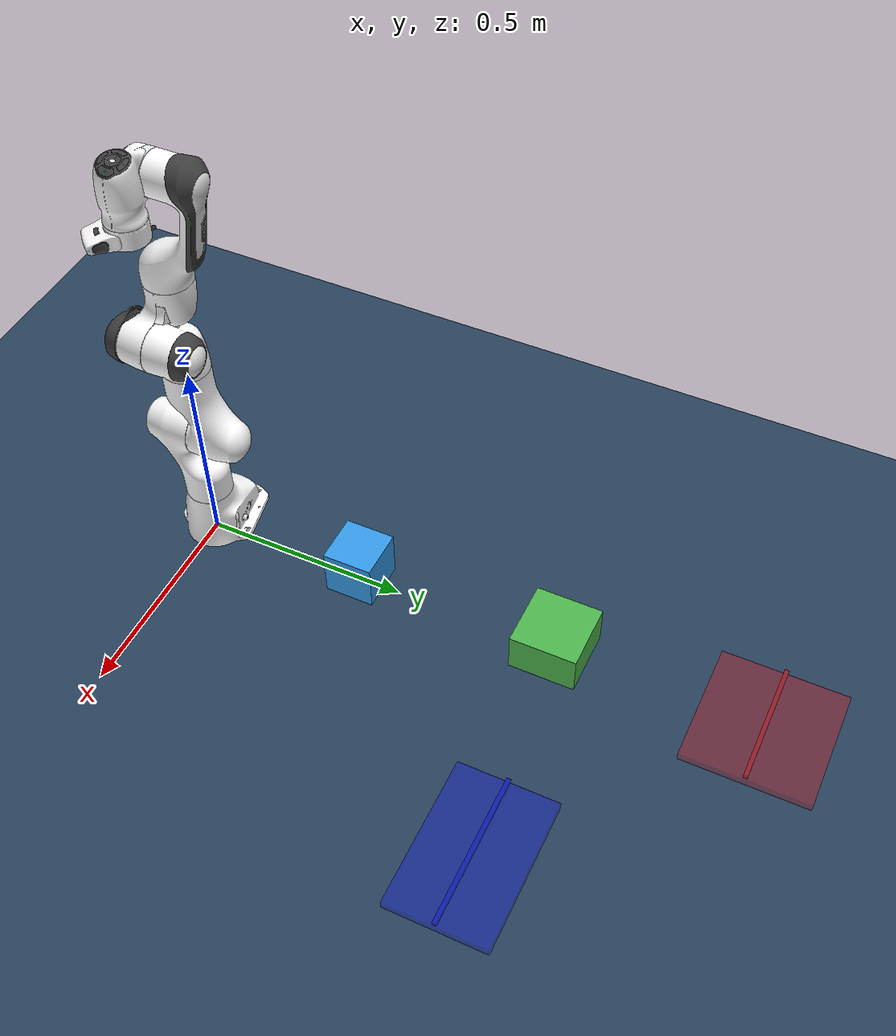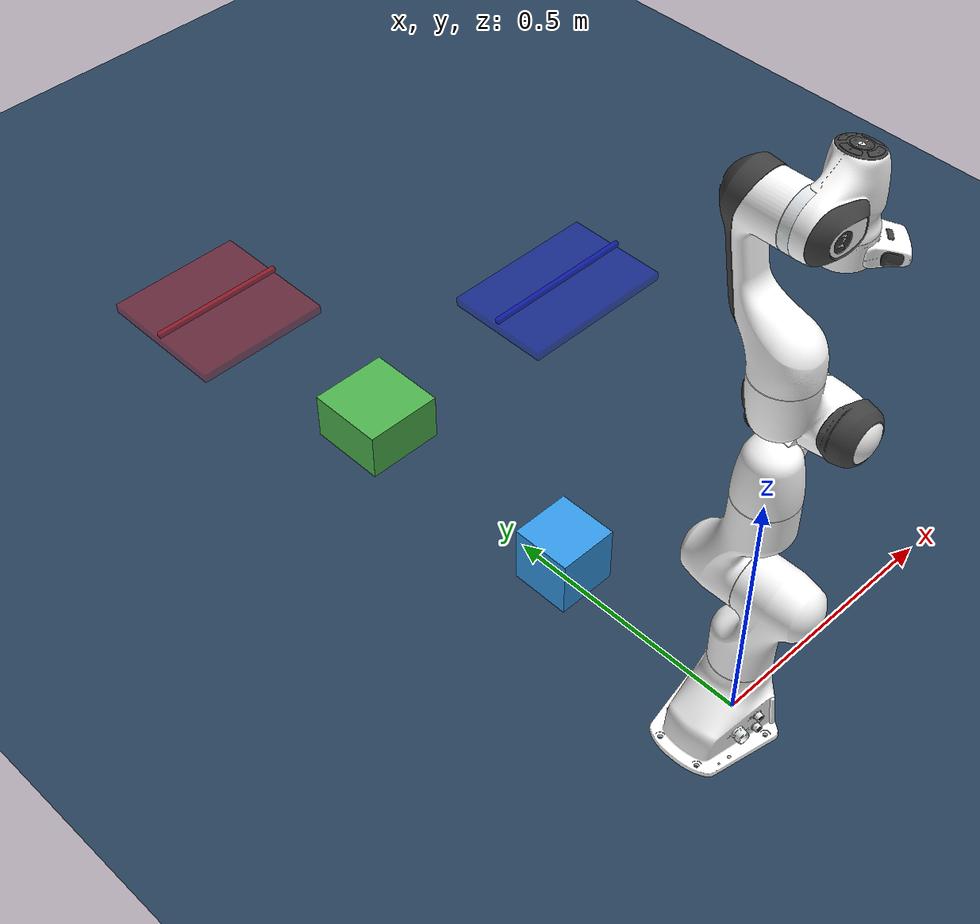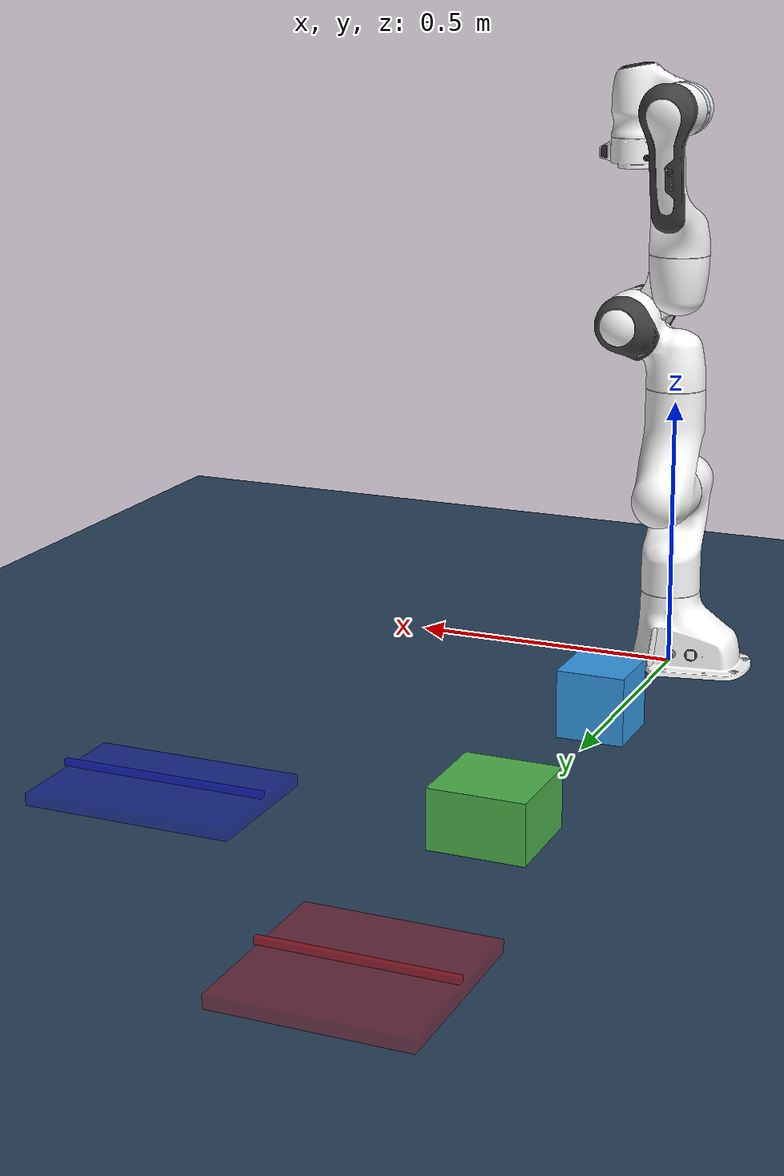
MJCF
<mujoco model="panda push scene">
  <!-- 仅保留必要设置 -->
  <compiler angle="radian"
            autolimits="true"
            meshdir="../mj_assets/franka_emika_panda/assets"/>

  <option integrator="implicitfast"
          noslip_iterations="1"
          timestep="0.001"
          cone="pyramidal"
          tolerance="0"
          iterations="1"
          solver="Newton"
          ls_iterations="1">
    <flag multiccd="enable" warmstart="enable"/>
  </option>

  <!-- Panda（无夹爪） -->
  <include file="../mj_assets/franka_emika_panda/mjx_panda_nohand.xml"/>

  <statistic center="0.5 0 0.8" extent="1.2"/>

  <visual>
    <headlight diffuse="0.6 0.6 0.6" ambient="0.3 0.3 0.3" specular="0 0 0"/>
    <rgba haze="0.15 0.25 0.35 1"/>
    <global azimuth="120" elevation="-20"/>
  </visual>

  <asset>
    <texture type="skybox" builtin="gradient" rgb1="0.3 0.5 0.7" rgb2="0 0 0" width="512" height="3072"/>
    <texture type="2d" name="groundplane" builtin="checker" mark="edge"
             rgb1="0.2 0.3 0.4" rgb2="0.1 0.2 0.3" markrgb="0.8 0.8 0.8"
             width="300" height="300"/>
    <material name="groundplane" texture="groundplane" texuniform="true" texrepeat="5 5" reflectance="0.2"/>
  </asset>

  <worldbody>
    <light pos="0 0 2.0" dir="0 0 -1" directional="true"/>
    <camera name="watching" pos="2.0 -1.5 1.5" xyaxes="0.6 0.6 0.0 -0.3 0.3 0.9"/>

    <!-- 地面（纯视觉） -->
    <geom name="floor" type="plane" size="0 0 0.05" material="groundplane"/>

    <!-- ========= 主直线（x=0，沿 +y 方向） ========= -->
    <!-- 1) 蓝色可推立方体（起点，离机械臂最近） -->
    <body name="pushable_block" pos="0.0 0.40 0.06" quat="1 0 0 0">
      <!-- 方块半高=0.06，z=0.06 正好落地 -->
      <joint type="free" damping="0.01" name="block_joint"/>
      <geom name="pushable_geom" mass="0.5" type="box" size="0.06 0.06 0.06"
            rgba="0.2 0.6 0.9 1" friction="1.0 0.005 1e-4" condim="6"
            solref="0.008 1" solimp="0.95 0.99 0.001"/>
      <site name="block_site" pos="0 0 0" size="0.03" type="sphere"/>
    </body>

    <!-- 2) 绿色障碍（中间） -->
    <body name="obstacle_block" pos="0.0 0.90 0.05">
      <!-- 障碍半高=0.05，z=0.05 正好落地 -->
      <geom name="obstacle_geom" type="box" size="0.08 0.08 0.05"
            rgba="0.3 0.7 0.3 1" friction="1.0 0.005 1e-4" condim="6"
            solref="0.008 1" solimp="0.95 0.99 0.001"/>
      <site name="obstacle_site" pos="0 0 0" size="0.01" type="sphere" rgba="0.3 0.7 0.3 1"/>
    </body>

    <!-- 2b) 蓝色中间停留区域（远离方块，位于障碍右前方以形成大弧线） -->
    <!-- 选点：x=+0.55 (侧向偏移)，y=0.95 (略在障碍前)，z=0.01 作为“地贴” -->
    <body name="intermediate_area" pos="0.55 0.95 0.01">
      <!-- 做成长方形，让通过/停留判断更宽容；纯视觉，不参与碰撞 -->
      <geom name="intermediate_zone" type="box" size="0.18 0.12 0.01"
            rgba="0 0 1 0.30" contype="0" conaffinity="0"/>
      <site name="intermediate_site" pos="0 0 0.02" size="0.18" type="box" rgba="0 0 1 0.50"/>
    </body>

    <!-- 3) 红色目标区域（最远，纯视觉标记） -->
    <body name="target_area" pos="0.0 1.40 0.01">
      <geom name="target_zone" type="box" size="0.15 0.15 0.01"
            rgba="1 0 0 0.3" contype="0" conaffinity="0"/>
      <site name="target_site" pos="0 0 0.02" size="0.15" type="box" rgba="1 0 0 0.5"/>
    </body>
    <!-- ========= 主直线结束 ========= -->

  </worldbody>
</mujoco>

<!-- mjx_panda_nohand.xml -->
<mujoco model="panda">
  <compiler angle="radian"  autolimits="true"/>

  <default>
    <default class="panda">
      <material specular="0.5" shininess="0.25"/>
      <joint armature="0.1" damping="1" axis="0 0 1" range="-2.8973 2.8973"/>
      <general dyntype="none" biastype="affine" ctrlrange="-2.8973 2.8973" forcerange="-87 87"/>
      <position forcerange="-100 100"/>
      <default class="finger">
        <joint axis="0 1 0" type="slide" range="0 0.04"/>
      </default>

      <default class="visual">
        <geom type="mesh" contype="0" conaffinity="0" group="2"/>
      </default>
      <default class="collision">
        <geom group="3" type="mesh" contype="1" conaffinity="0"/>
      </default>
    </default>
  </default>

  <asset>
    <material class="panda" name="white" rgba="1 1 1 1"/>
    <material class="panda" name="off_white" rgba="0.901961 0.921569 0.929412 1"/>
    <material class="panda" name="black" rgba="0.25 0.25 0.25 1"/>
    <material class="panda" name="green" rgba="0 1 0 1"/>
    <material class="panda" name="light_blue" rgba="0.039216 0.541176 0.780392 1"/>

    <!-- Collision meshes -->
    <mesh name="link0_c" file="link0.stl"/>
    <mesh name="link1_c" file="link1.stl"/>
    <mesh name="link2_c" file="link2.stl"/>
    <mesh name="link3_c" file="link3.stl"/>
    <mesh name="link4_c" file="link4.stl"/>
    <mesh name="link5_c0" file="link5_collision_0.obj"/>
    <mesh name="link5_c1" file="link5_collision_1.obj"/>
    <mesh name="link5_c2" file="link5_collision_2.obj"/>
    <mesh name="link6_c" file="link6.stl"/>
    <mesh name="link7_c" file="link7.stl"/>

    <!-- Visual meshes -->
    <mesh file="link0_0.obj"/>
    <mesh file="link0_1.obj"/>
    <mesh file="link0_2.obj"/>
    <mesh file="link0_3.obj"/>
    <mesh file="link0_4.obj"/>
    <mesh file="link0_5.obj"/>
    <mesh file="link0_7.obj"/>
    <mesh file="link0_8.obj"/>
    <mesh file="link0_9.obj"/>
    <mesh file="link0_10.obj"/>
    <mesh file="link0_11.obj"/>
    <mesh file="link1.obj"/>
    <mesh file="link2.obj"/>
    <mesh file="link3_0.obj"/>
    <mesh file="link3_1.obj"/>
    <mesh file="link3_2.obj"/>
    <mesh file="link3_3.obj"/>
    <mesh file="link4_0.obj"/>
    <mesh file="link4_1.obj"/>
    <mesh file="link4_2.obj"/>
    <mesh file="link4_3.obj"/>
    <mesh file="link5_0.obj"/>
    <mesh file="link5_1.obj"/>
    <mesh file="link5_2.obj"/>
    <mesh file="link6_0.obj"/>
    <mesh file="link6_1.obj"/>
    <mesh file="link6_2.obj"/>
    <mesh file="link6_3.obj"/>
    <mesh file="link6_4.obj"/>
    <mesh file="link6_5.obj"/>
    <mesh file="link6_6.obj"/>
    <mesh file="link6_7.obj"/>
    <mesh file="link6_8.obj"/>
    <mesh file="link6_9.obj"/>
    <mesh file="link6_10.obj"/>
    <mesh file="link6_11.obj"/>
    <mesh file="link6_12.obj"/>
    <mesh file="link6_13.obj"/>
    <mesh file="link6_14.obj"/>
    <mesh file="link6_15.obj"/>
    <mesh file="link6_16.obj"/>
    <mesh file="link7_0.obj"/>
    <mesh file="link7_1.obj"/>
    <mesh file="link7_2.obj"/>
    <mesh file="link7_3.obj"/>
    <mesh file="link7_4.obj"/>
    <mesh file="link7_5.obj"/>
    <mesh file="link7_6.obj"/>
    <mesh file="link7_7.obj"/>
  </asset>

  <worldbody>
    <light name="top" pos="0 0 2" mode="trackcom"/>
    <body name="link0" childclass="panda">
      <inertial mass="0.629769" pos="-0.041018 -0.00014 0.049974"
        fullinertia="0.00315 0.00388 0.004285 8.2904e-7 0.00015 8.2299e-6"/>
      <geom mesh="link0_0" material="off_white" class="visual"/>
      <geom mesh="link0_1" material="black" class="visual"/>
      <geom mesh="link0_2" material="off_white" class="visual"/>
      <geom mesh="link0_3" material="black" class="visual"/>
      <geom mesh="link0_4" material="off_white" class="visual"/>
      <geom mesh="link0_5" material="black" class="visual"/>
      <geom mesh="link0_7" material="white" class="visual"/>
      <geom mesh="link0_8" material="white" class="visual"/>
      <geom mesh="link0_9" material="black" class="visual"/>
      <geom mesh="link0_10" material="off_white" class="visual"/>
      <geom mesh="link0_11" material="white" class="visual"/>
      <geom mesh="link0_c" class="collision"/>
      <body name="link1" pos="0 0 0.333">
        <inertial mass="4.970684" pos="0.003875 0.002081 -0.04762"
          fullinertia="0.70337 0.70661 0.0091170 -0.00013900 0.0067720 0.019169"/>
        <joint name="joint1" damping="40"/>
        <geom material="white" mesh="link1" class="visual"/>
        <geom mesh="link1_c" class="collision"/>
        <body name="link2" quat="1 -1 0 0">
          <inertial mass="0.646926" pos="-0.003141 -0.02872 0.003495"
            fullinertia="0.0079620 2.8110e-2 2.5995e-2 -3.925e-3 1.0254e-2 7.04e-4"/>
          <joint name="joint2" range="-1.7628 1.7628" damping="40"/>
          <geom material="white" mesh="link2" class="visual"/>
          <geom mesh="link2_c" class="collision"/>
          <body name="link3" pos="0 -0.316 0" quat="1 1 0 0">
            <joint name="joint3" damping="40"/>
            <inertial mass="3.228604" pos="2.7518e-2 3.9252e-2 -6.6502e-2"
              fullinertia="3.7242e-2 3.6155e-2 1.083e-2 -4.761e-3 -1.1396e-2 -1.2805e-2"/>
            <geom mesh="link3_0" material="white" class="visual"/>
            <geom mesh="link3_1" material="white" class="visual"/>
            <geom mesh="link3_2" material="white" class="visual"/>
            <geom mesh="link3_3" material="black" class="visual"/>
            <geom mesh="link3_c" class="collision"/>
            <body name="link4" pos="0.0825 0 0" quat="1 1 0 0">
              <inertial mass="3.587895" pos="-5.317e-2 1.04419e-1 2.7454e-2"
                fullinertia="2.5853e-2 1.9552e-2 2.8323e-2 7.796e-3 -1.332e-3 8.641e-3"/>
              <joint name="joint4" range="-3.0718 -0.0698" damping="40"/>
              <geom mesh="link4_0" material="white" class="visual"/>
              <geom mesh="link4_1" material="white" class="visual"/>
              <geom mesh="link4_2" material="black" class="visual"/>
              <geom mesh="link4_3" material="white" class="visual"/>
              <geom mesh="link4_c" class="collision"/>
              <body name="link5" pos="-0.0825 0.384 0" quat="1 -1 0 0">
                <inertial mass="1.225946" pos="-1.1953e-2 4.1065e-2 -3.8437e-2"
                  fullinertia="3.5549e-2 2.9474e-2 8.627e-3 -2.117e-3 -4.037e-3 2.29e-4"/>
                <joint name="joint5" damping="2"/>
                <geom mesh="link5_0" material="black" class="visual"/>
                <geom mesh="link5_1" material="white" class="visual"/>
                <geom mesh="link5_2" material="white" class="visual"/>
                <geom mesh="link5_c0" class="collision"/>
                <geom mesh="link5_c1" class="collision"/>
                <geom mesh="link5_c2" class="collision"/>
                <body name="link6" quat="1 1 0 0">
                  <inertial mass="1.666555" pos="6.0149e-2 -1.4117e-2 -1.0517e-2"
                    fullinertia="1.964e-3 4.354e-3 5.433e-3 1.09e-4 -1.158e-3 3.41e-4"/>
                  <joint name="joint6" range="-0.0175 3.7525" damping="2"/>
                  <geom mesh="link6_0" material="off_white" class="visual"/>
                  <geom mesh="link6_1" material="white" class="visual"/>
                  <geom mesh="link6_2" material="black" class="visual"/>
                  <geom mesh="link6_3" material="white" class="visual"/>
                  <geom mesh="link6_4" material="white" class="visual"/>
                  <geom mesh="link6_5" material="white" class="visual"/>
                  <geom mesh="link6_6" material="white" class="visual"/>
                  <geom mesh="link6_7" material="light_blue" class="visual"/>
                  <geom mesh="link6_8" material="light_blue" class="visual"/>
                  <geom mesh="link6_9" material="black" class="visual"/>
                  <geom mesh="link6_10" material="black" class="visual"/>
                  <geom mesh="link6_11" material="white" class="visual"/>
                  <geom mesh="link6_12" material="green" class="visual"/>
                  <geom mesh="link6_13" material="white" class="visual"/>
                  <geom mesh="link6_14" material="black" class="visual"/>
                  <geom mesh="link6_15" material="black" class="visual"/>
                  <geom mesh="link6_16" material="white" class="visual"/>
                  <geom mesh="link6_c" class="collision"/>
                  <body name="link7" pos="0.088 0 0" quat="1 1 0 0">
                    <inertial mass="7.35522e-01" pos="1.0517e-2 -4.252e-3 6.1597e-2"
                      fullinertia="1.2516e-2 1.0027e-2 4.815e-3 -4.28e-4 -1.196e-3 -7.41e-4"/>
                    <joint name="joint7" damping="2"/>
                    <geom mesh="link7_0" material="white" class="visual"/>
                    <geom mesh="link7_1" material="black" class="visual"/>
                    <geom mesh="link7_2" material="black" class="visual"/>
                    <geom mesh="link7_3" material="black" class="visual"/>
                    <geom mesh="link7_4" material="black" class="visual"/>
                    <geom mesh="link7_5" material="black" class="visual"/>
                    <geom mesh="link7_6" material="black" class="visual"/>
                    <geom mesh="link7_7" material="white" class="visual"/>
                    <geom mesh="link7_c" class="collision"/>
                  </body>
                </body>
              </body>
            </body>
          </body>
        </body>
      </body>
    </body>
  </worldbody>

  <actuator>
    <motor class="panda" name="actuator1" joint="joint1" gear="1" ctrlrange="-87 87"/>
    <motor class="panda" name="actuator2" joint="joint2" gear="1" ctrlrange="-87 87"/>
    <motor class="panda" name="actuator3" joint="joint3" gear="1" ctrlrange="-87 87"/>
    <motor class="panda" name="actuator4" joint="joint4" gear="1" ctrlrange="-87 87"/>
    <motor class="panda" name="actuator5" joint="joint5" gear="1" ctrlrange="-12 12"/>
    <motor class="panda" name="actuator6" joint="joint6" gear="1" ctrlrange="-12 12"/>
    <motor class="panda" name="actuator7" joint="joint7" gear="1" ctrlrange="-12 12"/>
  </actuator>

  <contact>
    <exclude body1="link0" body2="link1"/>
  </contact>
</mujoco>
